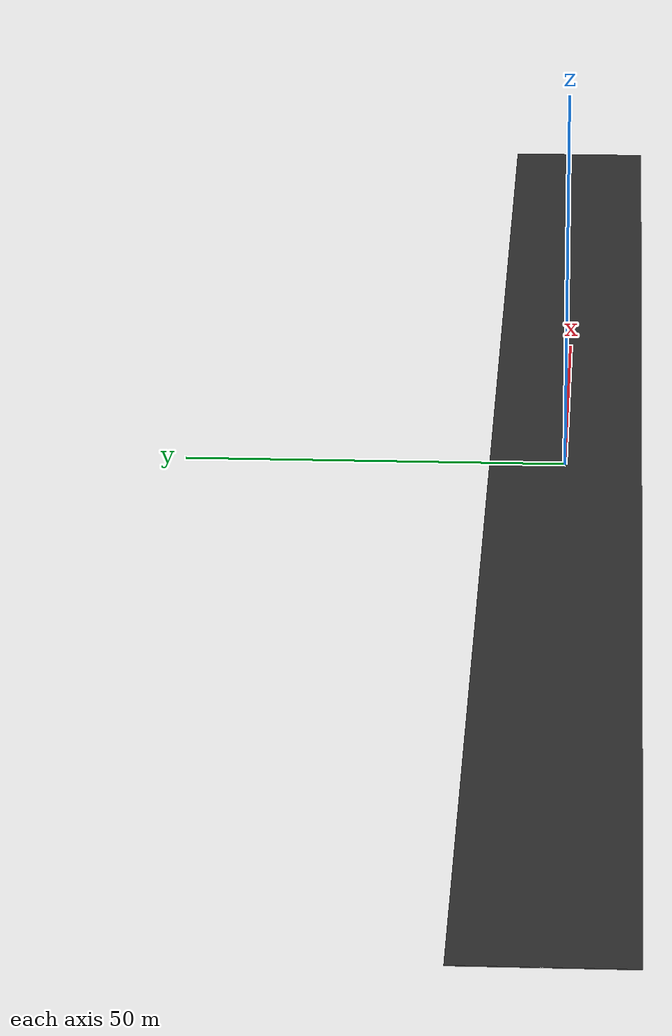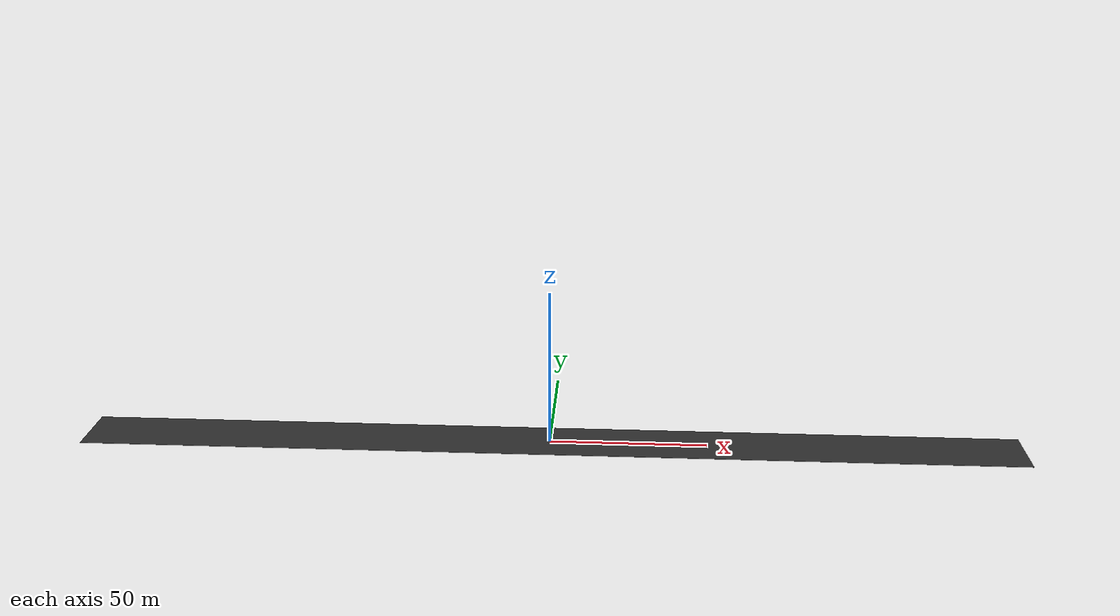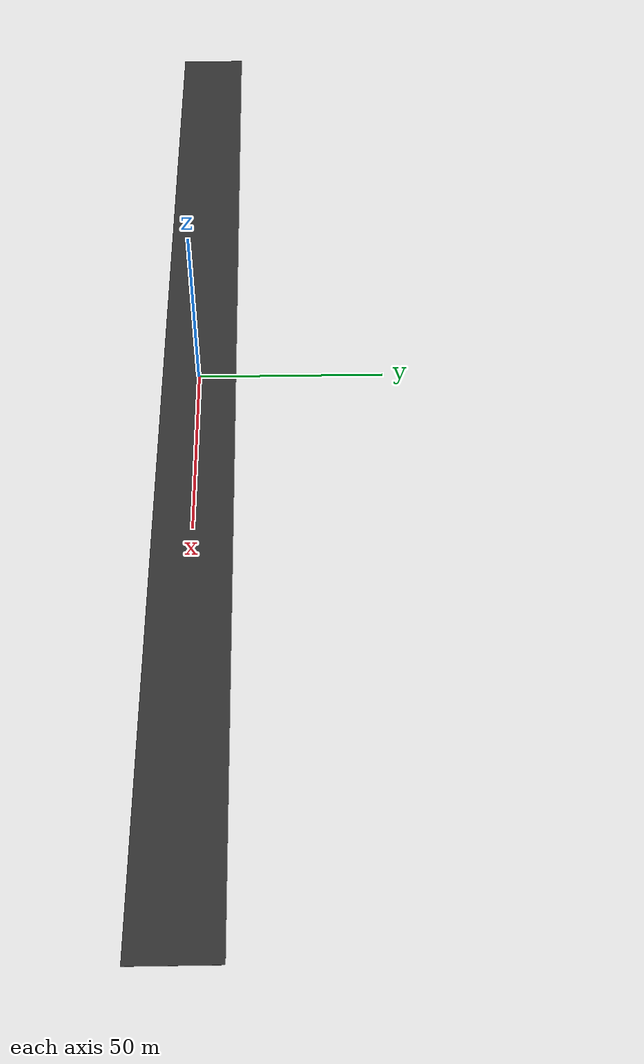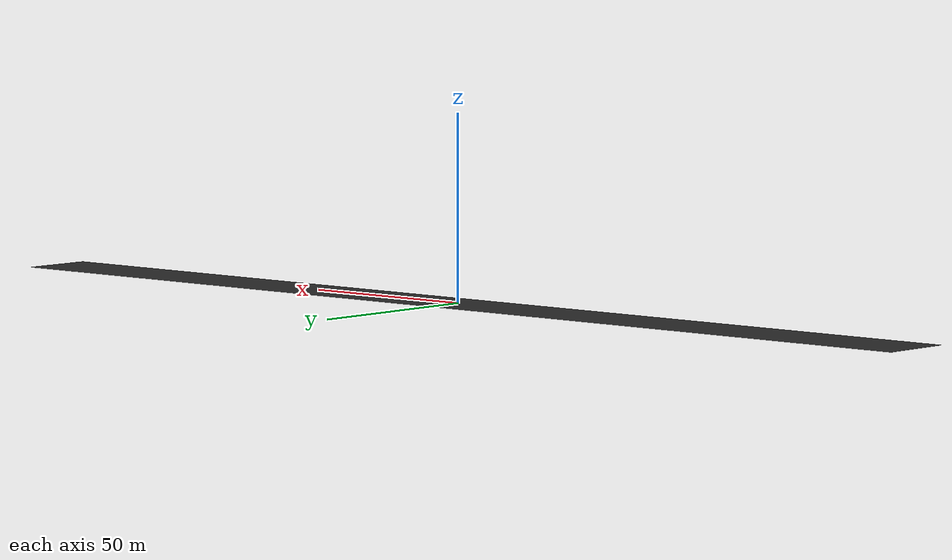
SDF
<?xml version="1.0" ?>
<sdf version="1.9">
  <model name="my_runway">
    <static>true</static>
    <link name="link">

      <collision name="collision">
        <geometry>
          <box>
            <size>300 20 0.1</size> </box>
        </geometry>
        <surface>
            <friction>
              <ode>
                <mu>100</mu> <mu2>50</mu2>
              </ode>
            </friction>
        </surface>
      </collision>

      <visual name="stripe">
	  <pose>0 0 0.001 0 0 0</pose> <geometry>
	    <box>
	      <size>300 1 0.01</size> </box>
	  </geometry>
	  <material>
	    <ambient>1 1 1 1</ambient> <diffuse>1 1 1 1</diffuse>
	  </material>
	</visual>

      <visual name="visual">

        <geometry>
          <box>
            <size>300 20 0.1</size>
          </box>
        </geometry>

        <material>
          <ambient>0.2 0.2 0.2 1</ambient> <diffuse>0.2 0.2 0.2 1</diffuse>
          <specular>0.1 0.1 0.1 1</specular>
        </material>

      </visual>
    </link>
  </model>
</sdf>
